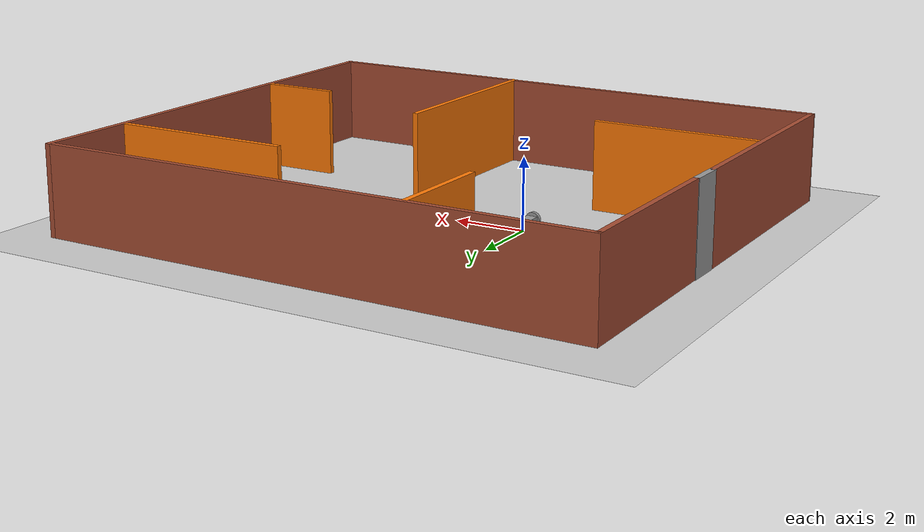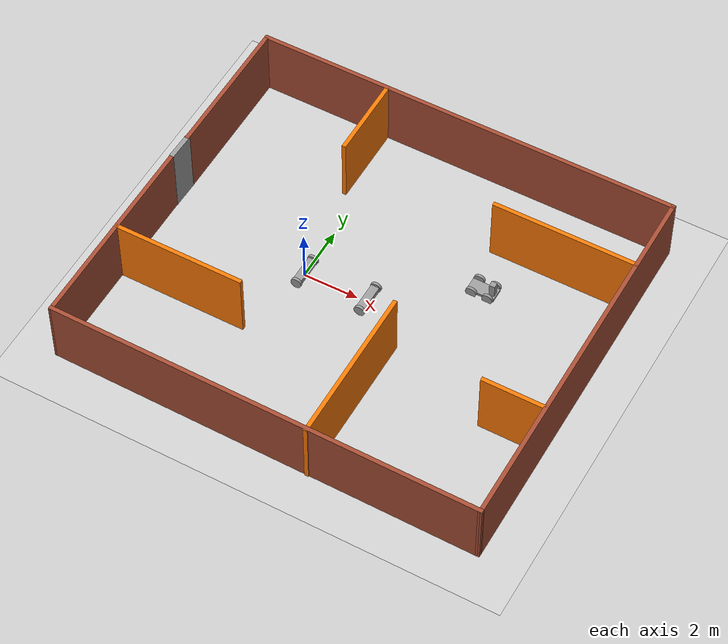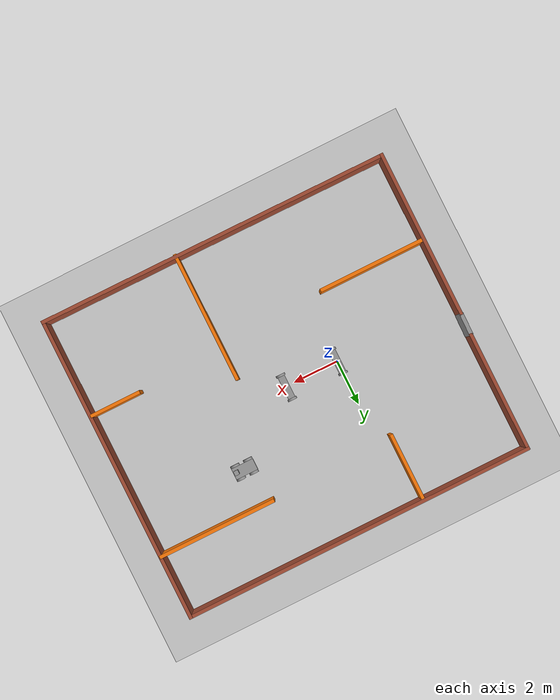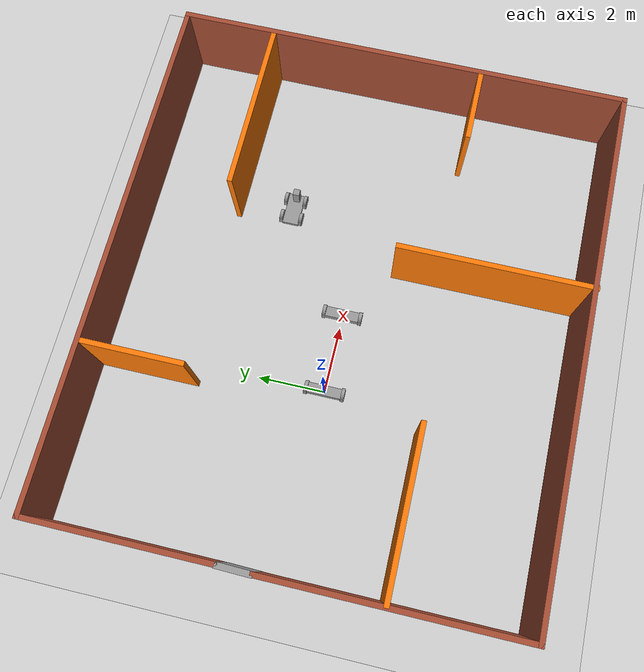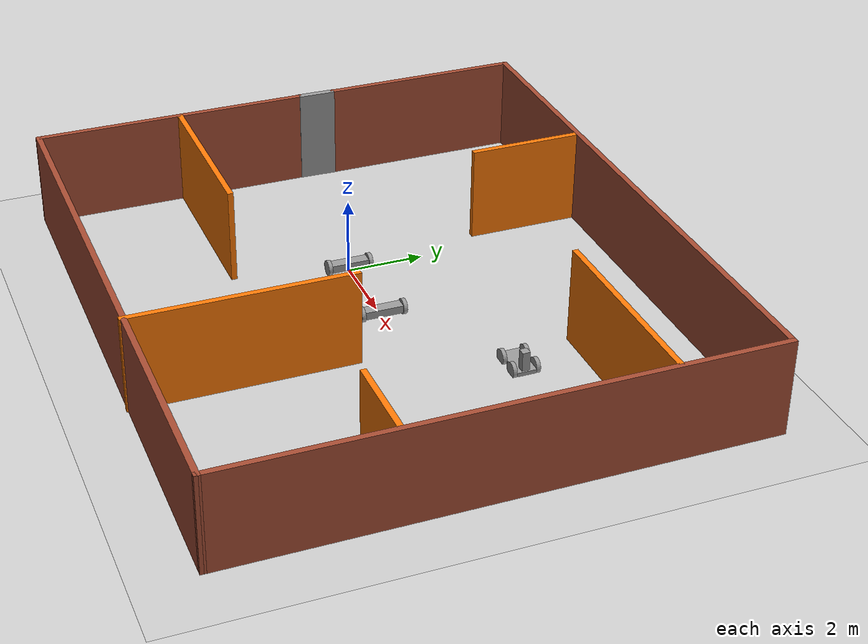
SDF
<sdf version="1.6">
 <world name="default">
  <plugin name="hello" filename="libhello.so"/>
  <light name="sun" type="directional">
   <pose>0 0 10 0 -0 0</pose>
   <diffuse>0.8 0.8 0.8 1</diffuse>
   <specular>0.2 0.2 0.2 1</specular>
   <attenuation>
    <range>1000</range>
    <constant>0.9</constant>
    <linear>0.01</linear>
    <quadratic>0.001</quadratic>
   </attenuation>
   <direction>-0.5 0.1 -0.9</direction>
  </light>
  <model name="ground_plane">
   <static>1</static>
   <link name="link">
    <collision name="collision">
     <geometry><plane><normal>0 0 1</normal><size>100 100</size></plane></geometry>
     <surface>
      <contact><collide_bitmask>65535</collide_bitmask></contact>
      <friction><ode><mu>100</mu><mu2>50</mu2></ode></friction>
     </surface>
    </collision>
    <visual name="visual">
     <cast_shadows>0</cast_shadows>
     <geometry><plane><normal>0 0 1</normal><size>100 100</size></plane></geometry>
     <material>
      <script><uri>file://media/materials/scripts/gazebo.material</uri><name>Gazebo/Grey</name></script>
     </material>
    </visual>
   </link>
  </model>
  <gravity>0 0 -9.8</gravity>
  <magnetic_field>6e-06 2.3e-05 -4.2e-05</magnetic_field>
  <atmosphere type="adiabatic"/>
  <physics name="default_physics" default="0" type="ode">
   <max_step_size>0.001</max_step_size>
   <real_time_factor>1</real_time_factor>
   <real_time_update_rate>1000</real_time_update_rate>
  </physics>
  <scene><ambient>0.4 0.4 0.4 1</ambient><background>0.7 0.7 0.7 1</background><shadows>1</shadows></scene>
  <spherical_coordinates>
   <surface_model>EARTH_WGS84</surface_model>
   <latitude_deg>0</latitude_deg>
   <longitude_deg>0</longitude_deg>
   <elevation>0</elevation>
   <heading_deg>0</heading_deg>
  </spherical_coordinates>
  <model name="my-robot">
   <plugin name="modelpush" filename="libmodelpush.so"/>
   <link name="link">
    <pose>0 0 0.2 0 -0 0</pose>
    <inertial>
     <mass>1</mass>
     <inertia>
      <ixx>0.166667</ixx>
      <ixy>0</ixy>
      <ixz>0</ixz>
      <iyy>0.166667</iyy>
      <iyz>0</iyz>
      <izz>0.166667</izz>
     </inertia>
    </inertial>
    <visual name="visual">
     <geometry><box><size>0.3 1 0.2</size></box></geometry>
     <material>
      <script><name>Gazebo/Grey</name><uri>file://media/materials/scripts/gazebo.material</uri></script>
      <shader type="pixel"><normal_map>__default__</normal_map></shader>
      <ambient>0.3 0.3 0.3 1</ambient>
      <diffuse>0.7 0.7 0.7 1</diffuse>
      <specular>0.01 0.01 0.01 1</specular>
      <emissive>0 0 0 1</emissive>
     </material>
    </visual>
    <collision name="collision">
     <geometry><box><size>0.3 1 0.2</size></box></geometry>
     <surface>
      <friction>
       <ode><mu>1</mu><mu2>1</mu2><fdir1>0 0 0</fdir1><slip1>0</slip1><slip2>0</slip2></ode>
       <torsional>
        <coefficient>1</coefficient>
        <patch_radius>0</patch_radius>
        <surface_radius>0</surface_radius>
        <use_patch_radius>1</use_patch_radius>
        <ode><slip>0</slip></ode>
       </torsional>
      </friction>
      <bounce><restitution_coefficient>0</restitution_coefficient><threshold>1e+06</threshold></bounce>
      <contact>
       <collide_without_contact>0</collide_without_contact>
       <collide_without_contact_bitmask>1</collide_without_contact_bitmask>
       <collide_bitmask>1</collide_bitmask>
       <ode>
        <soft_cfm>0</soft_cfm>
        <soft_erp>0.2</soft_erp>
        <kp>1e+13</kp>
        <kd>1</kd>
        <max_vel>0.01</max_vel>
        <min_depth>0</min_depth>
       </ode>
       <bullet>
        <split_impulse>1</split_impulse>
        <split_impulse_penetration_threshold>-0.01</split_impulse_penetration_threshold>
        <soft_cfm>0</soft_cfm>
        <soft_erp>0.2</soft_erp>
        <kp>1e+13</kp>
        <kd>1</kd>
       </bullet>
      </contact>
     </surface>
    </collision>
   </link>
   <link name="link_0">
    <pose>0 -0.550019 0.2 1.5707 -0 0</pose>
    <inertial>
     <mass>1</mass>
     <inertia><ixx>0.145833</ixx><ixy>0</ixy><ixz>0</ixz><iyy>0.145833</iyy><iyz>0</iyz><izz>0.125</izz></inertia>
    </inertial>
    <visual name="visual">
     <geometry><cylinder><radius>0.2</radius><length>0.1</length></cylinder></geometry>
     <material>
      <lighting>1</lighting>
      <script><uri>file://media/materials/scripts/gazebo.material</uri><name>Gazebo/Grey</name></script>
      <shader type="pixel"><normal_map>__default__</normal_map></shader>
      <ambient>0.3 0.3 0.3 1</ambient>
      <diffuse>0.7 0.7 0.7 1</diffuse>
      <specular>0.01 0.01 0.01 1</specular>
      <emissive>0 0 0 1</emissive>
     </material>
    </visual>
    <collision name="collision">
     <geometry><cylinder><radius>0.2</radius><length>0.1</length></cylinder></geometry>
     <surface>
      <friction>
       <ode><mu>1</mu><mu2>1</mu2><fdir1>0 0 0</fdir1><slip1>0</slip1><slip2>0</slip2></ode>
       <torsional>
        <coefficient>1</coefficient>
        <patch_radius>0</patch_radius>
        <surface_radius>0</surface_radius>
        <use_patch_radius>1</use_patch_radius>
        <ode><slip>0</slip></ode>
       </torsional>
      </friction>
      <bounce><restitution_coefficient>0</restitution_coefficient><threshold>1e+06</threshold></bounce>
      <contact>
       <collide_without_contact>0</collide_without_contact>
       <collide_without_contact_bitmask>1</collide_without_contact_bitmask>
       <collide_bitmask>1</collide_bitmask>
       <ode>
        <soft_cfm>0</soft_cfm>
        <soft_erp>0.2</soft_erp>
        <kp>1e+13</kp>
        <kd>1</kd>
        <max_vel>0.01</max_vel>
        <min_depth>0</min_depth>
       </ode>
       <bullet>
        <split_impulse>1</split_impulse>
        <split_impulse_penetration_threshold>-0.01</split_impulse_penetration_threshold>
        <soft_cfm>0</soft_cfm>
        <soft_erp>0.2</soft_erp>
        <kp>1e+13</kp>
        <kd>1</kd>
       </bullet>
      </contact>
     </surface>
    </collision>
   </link>
   <link name="link_0_clone">
    <pose>0 0.550019 0.2 1.5707 -0 0</pose>
    <inertial>
     <mass>1</mass>
     <inertia><ixx>0.145833</ixx><ixy>0</ixy><ixz>0</ixz><iyy>0.145833</iyy><iyz>0</iyz><izz>0.125</izz></inertia>
    </inertial>
    <visual name="visual">
     <geometry><cylinder><radius>0.2</radius><length>0.1</length></cylinder></geometry>
     <material>
      <lighting>1</lighting>
      <script><uri>file://media/materials/scripts/gazebo.material</uri><name>Gazebo/Grey</name></script>
      <shader type="pixel"><normal_map>__default__</normal_map></shader>
      <ambient>0.3 0.3 0.3 1</ambient>
      <diffuse>0.7 0.7 0.7 1</diffuse>
      <specular>0.01 0.01 0.01 1</specular>
      <emissive>0 0 0 1</emissive>
     </material>
    </visual>
    <collision name="collision">
     <geometry><cylinder><radius>0.2</radius><length>0.1</length></cylinder></geometry>
     <surface>
      <friction>
       <ode><mu>1</mu><mu2>1</mu2><fdir1>0 0 0</fdir1><slip1>0</slip1><slip2>0</slip2></ode>
       <torsional>
        <coefficient>1</coefficient>
        <patch_radius>0</patch_radius>
        <surface_radius>0</surface_radius>
        <use_patch_radius>1</use_patch_radius>
        <ode><slip>0</slip></ode>
       </torsional>
      </friction>
      <bounce><restitution_coefficient>0</restitution_coefficient><threshold>1e+06</threshold></bounce>
      <contact>
       <collide_without_contact>0</collide_without_contact>
       <collide_without_contact_bitmask>1</collide_without_contact_bitmask>
       <collide_bitmask>1</collide_bitmask>
       <ode>
        <soft_cfm>0</soft_cfm>
        <soft_erp>0.2</soft_erp>
        <kp>1e+13</kp>
        <kd>1</kd>
        <max_vel>0.01</max_vel>
        <min_depth>0</min_depth>
       </ode>
       <bullet>
        <split_impulse>1</split_impulse>
        <split_impulse_penetration_threshold>-0.01</split_impulse_penetration_threshold>
        <soft_cfm>0</soft_cfm>
        <soft_erp>0.2</soft_erp>
        <kp>1e+13</kp>
        <kd>1</kd>
       </bullet>
      </contact>
     </surface>
    </collision>
   </link>
   <joint name="link_JOINT_0" type="revolute">
    <parent>link</parent>
    <child>link_0</child>
    <axis>
     <xyz>1 0 0</xyz>
     <use_parent_model_frame>0</use_parent_model_frame>
     <limit>
      <lower>-1.79769e+308</lower>
      <upper>1.79769e+308</upper>
      <effort>-1</effort>
      <velocity>-1</velocity>
     </limit>
     <dynamics>
      <spring_reference>0</spring_reference>
      <spring_stiffness>0</spring_stiffness>
      <damping>0</damping>
      <friction>0</friction>
     </dynamics>
    </axis>
    <physics>
     <ode><limit><cfm>0</cfm><erp>0.2</erp></limit><suspension><cfm>0</cfm><erp>0.2</erp></suspension></ode>
    </physics>
   </joint>
   <joint name="link_JOINT_1" type="revolute">
    <parent>link</parent>
    <child>link_0_clone</child>
    <axis>
     <xyz>1 0 0</xyz>
     <use_parent_model_frame>0</use_parent_model_frame>
     <limit>
      <lower>-1.79769e+308</lower>
      <upper>1.79769e+308</upper>
      <effort>-1</effort>
      <velocity>-1</velocity>
     </limit>
     <dynamics>
      <spring_reference>0</spring_reference>
      <spring_stiffness>0</spring_stiffness>
      <damping>0</damping>
      <friction>0</friction>
     </dynamics>
    </axis>
    <physics>
     <ode><limit><cfm>0</cfm><erp>0.2</erp></limit><suspension><cfm>0</cfm><erp>0.2</erp></suspension></ode>
    </physics>
   </joint>
   <static>0</static>
  </model>
  <model name="my-robot_0">
   <link name="link">
    <pose>0 0 0.2 0 -0 0</pose>
    <inertial>
     <mass>1</mass>
     <inertia>
      <ixx>0.166667</ixx>
      <ixy>0</ixy>
      <ixz>0</ixz>
      <iyy>0.166667</iyy>
      <iyz>0</iyz>
      <izz>0.166667</izz>
     </inertia>
    </inertial>
    <visual name="visual">
     <geometry><box><size>0.3 1 0.2</size></box></geometry>
     <material>
      <script><name>Gazebo/Grey</name><uri>file://media/materials/scripts/gazebo.material</uri></script>
      <shader type="pixel"><normal_map>__default__</normal_map></shader>
      <ambient>0.3 0.3 0.3 1</ambient>
      <diffuse>0.7 0.7 0.7 1</diffuse>
      <specular>0.01 0.01 0.01 1</specular>
      <emissive>0 0 0 1</emissive>
     </material>
    </visual>
    <collision name="collision">
     <geometry><box><size>0.3 1 0.2</size></box></geometry>
     <surface>
      <friction>
       <ode><mu>1</mu><mu2>1</mu2><fdir1>0 0 0</fdir1><slip1>0</slip1><slip2>0</slip2></ode>
       <torsional>
        <coefficient>1</coefficient>
        <patch_radius>0</patch_radius>
        <surface_radius>0</surface_radius>
        <use_patch_radius>1</use_patch_radius>
        <ode><slip>0</slip></ode>
       </torsional>
      </friction>
      <bounce><restitution_coefficient>0</restitution_coefficient><threshold>1e+06</threshold></bounce>
      <contact>
       <collide_without_contact>0</collide_without_contact>
       <collide_without_contact_bitmask>1</collide_without_contact_bitmask>
       <collide_bitmask>1</collide_bitmask>
       <ode>
        <soft_cfm>0</soft_cfm>
        <soft_erp>0.2</soft_erp>
        <kp>1e+13</kp>
        <kd>1</kd>
        <max_vel>0.01</max_vel>
        <min_depth>0</min_depth>
       </ode>
       <bullet>
        <split_impulse>1</split_impulse>
        <split_impulse_penetration_threshold>-0.01</split_impulse_penetration_threshold>
        <soft_cfm>0</soft_cfm>
        <soft_erp>0.2</soft_erp>
        <kp>1e+13</kp>
        <kd>1</kd>
       </bullet>
      </contact>
     </surface>
    </collision>
   </link>
   <link name="link_0">
    <pose>0 -0.550019 0.2 1.5707 -0 0</pose>
    <inertial>
     <mass>1</mass>
     <inertia><ixx>0.145833</ixx><ixy>0</ixy><ixz>0</ixz><iyy>0.145833</iyy><iyz>0</iyz><izz>0.125</izz></inertia>
    </inertial>
    <visual name="visual">
     <geometry><cylinder><radius>0.2</radius><length>0.1</length></cylinder></geometry>
     <material>
      <lighting>1</lighting>
      <script><uri>file://media/materials/scripts/gazebo.material</uri><name>Gazebo/Grey</name></script>
      <shader type="pixel"><normal_map>__default__</normal_map></shader>
      <ambient>0.3 0.3 0.3 1</ambient>
      <diffuse>0.7 0.7 0.7 1</diffuse>
      <specular>0.01 0.01 0.01 1</specular>
      <emissive>0 0 0 1</emissive>
     </material>
    </visual>
    <collision name="collision">
     <geometry><cylinder><radius>0.2</radius><length>0.1</length></cylinder></geometry>
     <surface>
      <friction>
       <ode><mu>1</mu><mu2>1</mu2><fdir1>0 0 0</fdir1><slip1>0</slip1><slip2>0</slip2></ode>
       <torsional>
        <coefficient>1</coefficient>
        <patch_radius>0</patch_radius>
        <surface_radius>0</surface_radius>
        <use_patch_radius>1</use_patch_radius>
        <ode><slip>0</slip></ode>
       </torsional>
      </friction>
      <bounce><restitution_coefficient>0</restitution_coefficient><threshold>1e+06</threshold></bounce>
      <contact>
       <collide_without_contact>0</collide_without_contact>
       <collide_without_contact_bitmask>1</collide_without_contact_bitmask>
       <collide_bitmask>1</collide_bitmask>
       <ode>
        <soft_cfm>0</soft_cfm>
        <soft_erp>0.2</soft_erp>
        <kp>1e+13</kp>
        <kd>1</kd>
        <max_vel>0.01</max_vel>
        <min_depth>0</min_depth>
       </ode>
       <bullet>
        <split_impulse>1</split_impulse>
        <split_impulse_penetration_threshold>-0.01</split_impulse_penetration_threshold>
        <soft_cfm>0</soft_cfm>
        <soft_erp>0.2</soft_erp>
        <kp>1e+13</kp>
        <kd>1</kd>
       </bullet>
      </contact>
     </surface>
    </collision>
   </link>
   <link name="link_0_clone">
    <pose>0 0.550019 0.2 1.5707 -0 0</pose>
    <inertial>
     <mass>1</mass>
     <inertia><ixx>0.145833</ixx><ixy>0</ixy><ixz>0</ixz><iyy>0.145833</iyy><iyz>0</iyz><izz>0.125</izz></inertia>
    </inertial>
    <visual name="visual">
     <geometry><cylinder><radius>0.2</radius><length>0.1</length></cylinder></geometry>
     <material>
      <lighting>1</lighting>
      <script><uri>file://media/materials/scripts/gazebo.material</uri><name>Gazebo/Grey</name></script>
      <shader type="pixel"><normal_map>__default__</normal_map></shader>
      <ambient>0.3 0.3 0.3 1</ambient>
      <diffuse>0.7 0.7 0.7 1</diffuse>
      <specular>0.01 0.01 0.01 1</specular>
      <emissive>0 0 0 1</emissive>
     </material>
    </visual>
    <collision name="collision">
     <geometry><cylinder><radius>0.2</radius><length>0.1</length></cylinder></geometry>
     <surface>
      <friction>
       <ode><mu>1</mu><mu2>1</mu2><fdir1>0 0 0</fdir1><slip1>0</slip1><slip2>0</slip2></ode>
       <torsional>
        <coefficient>1</coefficient>
        <patch_radius>0</patch_radius>
        <surface_radius>0</surface_radius>
        <use_patch_radius>1</use_patch_radius>
        <ode><slip>0</slip></ode>
       </torsional>
      </friction>
      <bounce><restitution_coefficient>0</restitution_coefficient><threshold>1e+06</threshold></bounce>
      <contact>
       <collide_without_contact>0</collide_without_contact>
       <collide_without_contact_bitmask>1</collide_without_contact_bitmask>
       <collide_bitmask>1</collide_bitmask>
       <ode>
        <soft_cfm>0</soft_cfm>
        <soft_erp>0.2</soft_erp>
        <kp>1e+13</kp>
        <kd>1</kd>
        <max_vel>0.01</max_vel>
        <min_depth>0</min_depth>
       </ode>
       <bullet>
        <split_impulse>1</split_impulse>
        <split_impulse_penetration_threshold>-0.01</split_impulse_penetration_threshold>
        <soft_cfm>0</soft_cfm>
        <soft_erp>0.2</soft_erp>
        <kp>1e+13</kp>
        <kd>1</kd>
       </bullet>
      </contact>
     </surface>
    </collision>
   </link>
   <joint name="link_JOINT_0" type="revolute">
    <parent>link</parent>
    <child>link_0</child>
    <axis>
     <xyz>1 0 0</xyz>
     <use_parent_model_frame>0</use_parent_model_frame>
     <limit>
      <lower>-1.79769e+308</lower>
      <upper>1.79769e+308</upper>
      <effort>-1</effort>
      <velocity>-1</velocity>
     </limit>
     <dynamics>
      <spring_reference>0</spring_reference>
      <spring_stiffness>0</spring_stiffness>
      <damping>0</damping>
      <friction>0</friction>
     </dynamics>
    </axis>
    <physics>
     <ode><limit><cfm>0</cfm><erp>0.2</erp></limit><suspension><cfm>0</cfm><erp>0.2</erp></suspension></ode>
    </physics>
   </joint>
   <joint name="link_JOINT_1" type="revolute">
    <parent>link</parent>
    <child>link_0_clone</child>
    <axis>
     <xyz>1 0 0</xyz>
     <use_parent_model_frame>0</use_parent_model_frame>
     <limit>
      <lower>-1.79769e+308</lower>
      <upper>1.79769e+308</upper>
      <effort>-1</effort>
      <velocity>-1</velocity>
     </limit>
     <dynamics>
      <spring_reference>0</spring_reference>
      <spring_stiffness>0</spring_stiffness>
      <damping>0</damping>
      <friction>0</friction>
     </dynamics>
    </axis>
    <physics>
     <ode><limit><cfm>0</cfm><erp>0.2</erp></limit><suspension><cfm>0</cfm><erp>0.2</erp></suspension></ode>
    </physics>
   </joint>
   <static>0</static>
   <pose>2.38856 0.019112 0 0 -0 0</pose>
  </model>
  <model name="robot2">
   <plugin name="modelpush" filename="libmodelpush.so"/>
   <link name="link_0">
    <pose>-0.505429 -0.212278 0.058001 0 -0 0</pose>
    <inertial>
     <mass>1</mass>
     <inertia>
      <ixx>0.166667</ixx>
      <ixy>0</ixy>
      <ixz>0</ixz>
      <iyy>0.166667</iyy>
      <iyz>0</iyz>
      <izz>0.166667</izz>
     </inertia>
    </inertial>
    <visual name="visual">
     <geometry><box><size>1 0.5 0.1</size></box></geometry>
     <material>
      <lighting>1</lighting>
      <script><uri>file://media/materials/scripts/gazebo.material</uri><name>Gazebo/Grey</name></script>
      <shader type="pixel"><normal_map>__default__</normal_map></shader>
      <ambient>0.3 0.3 0.3 1</ambient>
      <diffuse>0.7 0.7 0.7 1</diffuse>
      <specular>0.01 0.01 0.01 1</specular>
      <emissive>0 0 0 1</emissive>
     </material>
    </visual>
    <collision name="collision">
     <geometry><box><size>1 0.5 0.1</size></box></geometry>
     <surface>
      <friction>
       <ode><mu>1</mu><mu2>1</mu2><fdir1>0 0 0</fdir1><slip1>0</slip1><slip2>0</slip2></ode>
       <torsional>
        <coefficient>1</coefficient>
        <patch_radius>0</patch_radius>
        <surface_radius>0</surface_radius>
        <use_patch_radius>1</use_patch_radius>
        <ode><slip>0</slip></ode>
       </torsional>
      </friction>
      <bounce><restitution_coefficient>0</restitution_coefficient><threshold>1e+06</threshold></bounce>
      <contact>
       <collide_without_contact>0</collide_without_contact>
       <collide_without_contact_bitmask>1</collide_without_contact_bitmask>
       <collide_bitmask>1</collide_bitmask>
       <ode>
        <soft_cfm>0</soft_cfm>
        <soft_erp>0.2</soft_erp>
        <kp>1e+13</kp>
        <kd>1</kd>
        <max_vel>0.01</max_vel>
        <min_depth>0</min_depth>
       </ode>
       <bullet>
        <split_impulse>1</split_impulse>
        <split_impulse_penetration_threshold>-0.01</split_impulse_penetration_threshold>
        <soft_cfm>0</soft_cfm>
        <soft_erp>0.2</soft_erp>
        <kp>1e+13</kp>
        <kd>1</kd>
       </bullet>
      </contact>
     </surface>
    </collision>
   </link>
   <link name="link_1">
    <pose>-0.805429 -0.512297 0.102996 1.5707 -0 0</pose>
    <inertial>
     <mass>1</mass>
     <inertia><ixx>0.145833</ixx><ixy>0</ixy><ixz>0</ixz><iyy>0.145833</iyy><iyz>0</iyz><izz>0.125</izz></inertia>
    </inertial>
    <visual name="visual">
     <geometry><cylinder><radius>0.2</radius><length>0.1</length></cylinder></geometry>
     <material>
      <lighting>1</lighting>
      <script><uri>file://media/materials/scripts/gazebo.material</uri><name>Gazebo/Grey</name></script>
      <shader type="pixel"><normal_map>__default__</normal_map></shader>
      <ambient>0.3 0.3 0.3 1</ambient>
      <diffuse>0.7 0.7 0.7 1</diffuse>
      <specular>0.01 0.01 0.01 1</specular>
      <emissive>0 0 0 1</emissive>
     </material>
    </visual>
    <collision name="collision">
     <geometry><cylinder><radius>0.2</radius><length>0.1</length></cylinder></geometry>
     <surface>
      <friction>
       <ode><mu>1</mu><mu2>1</mu2><fdir1>0 0 0</fdir1><slip1>0</slip1><slip2>0</slip2></ode>
       <torsional>
        <coefficient>1</coefficient>
        <patch_radius>0</patch_radius>
        <surface_radius>0</surface_radius>
        <use_patch_radius>1</use_patch_radius>
        <ode><slip>0</slip></ode>
       </torsional>
      </friction>
      <bounce><restitution_coefficient>0</restitution_coefficient><threshold>1e+06</threshold></bounce>
      <contact>
       <collide_without_contact>0</collide_without_contact>
       <collide_without_contact_bitmask>1</collide_without_contact_bitmask>
       <collide_bitmask>1</collide_bitmask>
       <ode>
        <soft_cfm>0</soft_cfm>
        <soft_erp>0.2</soft_erp>
        <kp>1e+13</kp>
        <kd>1</kd>
        <max_vel>0.01</max_vel>
        <min_depth>0</min_depth>
       </ode>
       <bullet>
        <split_impulse>1</split_impulse>
        <split_impulse_penetration_threshold>-0.01</split_impulse_penetration_threshold>
        <soft_cfm>0</soft_cfm>
        <soft_erp>0.2</soft_erp>
        <kp>1e+13</kp>
        <kd>1</kd>
       </bullet>
      </contact>
     </surface>
    </collision>
   </link>
   <link name="link_1_clone">
    <pose>-0.805429 0.087742 0.103001 1.5707 -0 0</pose>
    <inertial>
     <mass>1</mass>
     <inertia><ixx>0.145833</ixx><ixy>0</ixy><ixz>0</ixz><iyy>0.145833</iyy><iyz>0</iyz><izz>0.125</izz></inertia>
    </inertial>
    <visual name="visual">
     <geometry><cylinder><radius>0.2</radius><length>0.1</length></cylinder></geometry>
     <material>
      <lighting>1</lighting>
      <script><uri>file://media/materials/scripts/gazebo.material</uri><name>Gazebo/Grey</name></script>
      <shader type="pixel"><normal_map>__default__</normal_map></shader>
      <ambient>0.3 0.3 0.3 1</ambient>
      <diffuse>0.7 0.7 0.7 1</diffuse>
      <specular>0.01 0.01 0.01 1</specular>
      <emissive>0 0 0 1</emissive>
     </material>
    </visual>
    <collision name="collision">
     <geometry><cylinder><radius>0.2</radius><length>0.1</length></cylinder></geometry>
     <surface>
      <friction>
       <ode><mu>1</mu><mu2>1</mu2><fdir1>0 0 0</fdir1><slip1>0</slip1><slip2>0</slip2></ode>
       <torsional>
        <coefficient>1</coefficient>
        <patch_radius>0</patch_radius>
        <surface_radius>0</surface_radius>
        <use_patch_radius>1</use_patch_radius>
        <ode><slip>0</slip></ode>
       </torsional>
      </friction>
      <bounce><restitution_coefficient>0</restitution_coefficient><threshold>1e+06</threshold></bounce>
      <contact>
       <collide_without_contact>0</collide_without_contact>
       <collide_without_contact_bitmask>1</collide_without_contact_bitmask>
       <collide_bitmask>1</collide_bitmask>
       <ode>
        <soft_cfm>0</soft_cfm>
        <soft_erp>0.2</soft_erp>
        <kp>1e+13</kp>
        <kd>1</kd>
        <max_vel>0.01</max_vel>
        <min_depth>0</min_depth>
       </ode>
       <bullet>
        <split_impulse>1</split_impulse>
        <split_impulse_penetration_threshold>-0.01</split_impulse_penetration_threshold>
        <soft_cfm>0</soft_cfm>
        <soft_erp>0.2</soft_erp>
        <kp>1e+13</kp>
        <kd>1</kd>
       </bullet>
      </contact>
     </surface>
    </collision>
   </link>
   <link name="link_1_clone_0">
    <pose>-0.205429 -0.512297 0.103001 1.5707 -0 0</pose>
    <inertial>
     <mass>1</mass>
     <inertia><ixx>0.145833</ixx><ixy>0</ixy><ixz>0</ixz><iyy>0.145833</iyy><iyz>0</iyz><izz>0.125</izz></inertia>
    </inertial>
    <visual name="visual">
     <geometry><cylinder><radius>0.2</radius><length>0.1</length></cylinder></geometry>
     <material>
      <lighting>1</lighting>
      <script><uri>file://media/materials/scripts/gazebo.material</uri><name>Gazebo/Grey</name></script>
      <shader type="pixel"><normal_map>__default__</normal_map></shader>
      <ambient>0.3 0.3 0.3 1</ambient>
      <diffuse>0.7 0.7 0.7 1</diffuse>
      <specular>0.01 0.01 0.01 1</specular>
      <emissive>0 0 0 1</emissive>
     </material>
    </visual>
    <collision name="collision">
     <geometry><cylinder><radius>0.2</radius><length>0.1</length></cylinder></geometry>
     <surface>
      <friction>
       <ode><mu>1</mu><mu2>1</mu2><fdir1>0 0 0</fdir1><slip1>0</slip1><slip2>0</slip2></ode>
       <torsional>
        <coefficient>1</coefficient>
        <patch_radius>0</patch_radius>
        <surface_radius>0</surface_radius>
        <use_patch_radius>1</use_patch_radius>
        <ode><slip>0</slip></ode>
       </torsional>
      </friction>
      <bounce><restitution_coefficient>0</restitution_coefficient><threshold>1e+06</threshold></bounce>
      <contact>
       <collide_without_contact>0</collide_without_contact>
       <collide_without_contact_bitmask>1</collide_without_contact_bitmask>
       <collide_bitmask>1</collide_bitmask>
       <ode>
        <soft_cfm>0</soft_cfm>
        <soft_erp>0.2</soft_erp>
        <kp>1e+13</kp>
        <kd>1</kd>
        <max_vel>0.01</max_vel>
        <min_depth>0</min_depth>
       </ode>
       <bullet>
        <split_impulse>1</split_impulse>
        <split_impulse_penetration_threshold>-0.01</split_impulse_penetration_threshold>
        <soft_cfm>0</soft_cfm>
        <soft_erp>0.2</soft_erp>
        <kp>1e+13</kp>
        <kd>1</kd>
       </bullet>
      </contact>
     </surface>
    </collision>
   </link>
   <link name="link_1_clone_1">
    <pose>-0.205429 0.087742 0.103001 1.5707 -0 0</pose>
    <inertial>
     <mass>1</mass>
     <inertia><ixx>0.145833</ixx><ixy>0</ixy><ixz>0</ixz><iyy>0.145833</iyy><iyz>0</iyz><izz>0.125</izz></inertia>
    </inertial>
    <visual name="visual">
     <geometry><cylinder><radius>0.2</radius><length>0.1</length></cylinder></geometry>
     <material>
      <lighting>1</lighting>
      <script><uri>file://media/materials/scripts/gazebo.material</uri><name>Gazebo/Grey</name></script>
      <shader type="pixel"><normal_map>__default__</normal_map></shader>
      <ambient>0.3 0.3 0.3 1</ambient>
      <diffuse>0.7 0.7 0.7 1</diffuse>
      <specular>0.01 0.01 0.01 1</specular>
      <emissive>0 0 0 1</emissive>
     </material>
    </visual>
    <collision name="collision">
     <geometry><cylinder><radius>0.2</radius><length>0.1</length></cylinder></geometry>
     <surface>
      <friction>
       <ode><mu>1</mu><mu2>1</mu2><fdir1>0 0 0</fdir1><slip1>0</slip1><slip2>0</slip2></ode>
       <torsional>
        <coefficient>1</coefficient>
        <patch_radius>0</patch_radius>
        <surface_radius>0</surface_radius>
        <use_patch_radius>1</use_patch_radius>
        <ode><slip>0</slip></ode>
       </torsional>
      </friction>
      <bounce><restitution_coefficient>0</restitution_coefficient><threshold>1e+06</threshold></bounce>
      <contact>
       <collide_without_contact>0</collide_without_contact>
       <collide_without_contact_bitmask>1</collide_without_contact_bitmask>
       <collide_bitmask>1</collide_bitmask>
       <ode>
        <soft_cfm>0</soft_cfm>
        <soft_erp>0.2</soft_erp>
        <kp>1e+13</kp>
        <kd>1</kd>
        <max_vel>0.01</max_vel>
        <min_depth>0</min_depth>
       </ode>
       <bullet>
        <split_impulse>1</split_impulse>
        <split_impulse_penetration_threshold>-0.01</split_impulse_penetration_threshold>
        <soft_cfm>0</soft_cfm>
        <soft_erp>0.2</soft_erp>
        <kp>1e+13</kp>
        <kd>1</kd>
       </bullet>
      </contact>
     </surface>
    </collision>
   </link>
   <link name="link_2">
    <pose>-0.145429 -0.232278 0.358001 0 -0 0</pose>
    <inertial>
     <mass>1</mass>
     <inertia>
      <ixx>0.166667</ixx>
      <ixy>0</ixy>
      <ixz>0</ixz>
      <iyy>0.166667</iyy>
      <iyz>0</iyz>
      <izz>0.166667</izz>
     </inertia>
    </inertial>
    <visual name="visual">
     <geometry><box><size>0.2 0.2 0.5</size></box></geometry>
     <material>
      <lighting>1</lighting>
      <script><uri>file://media/materials/scripts/gazebo.material</uri><name>Gazebo/Grey</name></script>
      <shader type="pixel"><normal_map>__default__</normal_map></shader>
      <ambient>0.3 0.3 0.3 1</ambient>
      <diffuse>0.7 0.7 0.7 1</diffuse>
      <specular>0.01 0.01 0.01 1</specular>
      <emissive>0 0 0 1</emissive>
     </material>
    </visual>
    <collision name="collision">
     <geometry><box><size>0.2 0.2 0.5</size></box></geometry>
     <surface>
      <friction>
       <ode><mu>1</mu><mu2>1</mu2><fdir1>0 0 0</fdir1><slip1>0</slip1><slip2>0</slip2></ode>
       <torsional>
        <coefficient>1</coefficient>
        <patch_radius>0</patch_radius>
        <surface_radius>0</surface_radius>
        <use_patch_radius>1</use_patch_radius>
        <ode><slip>0</slip></ode>
       </torsional>
      </friction>
      <bounce><restitution_coefficient>0</restitution_coefficient><threshold>1e+06</threshold></bounce>
      <contact>
       <collide_without_contact>0</collide_without_contact>
       <collide_without_contact_bitmask>1</collide_without_contact_bitmask>
       <collide_bitmask>1</collide_bitmask>
       <ode>
        <soft_cfm>0</soft_cfm>
        <soft_erp>0.2</soft_erp>
        <kp>1e+13</kp>
        <kd>1</kd>
        <max_vel>0.01</max_vel>
        <min_depth>0</min_depth>
       </ode>
       <bullet>
        <split_impulse>1</split_impulse>
        <split_impulse_penetration_threshold>-0.01</split_impulse_penetration_threshold>
        <soft_cfm>0</soft_cfm>
        <soft_erp>0.2</soft_erp>
        <kp>1e+13</kp>
        <kd>1</kd>
       </bullet>
      </contact>
     </surface>
    </collision>
   </link>
   <joint name="link_0_JOINT_1" type="revolute">
    <parent>link_0</parent>
    <child>link_1</child>
    <axis>
     <xyz>1 0 0</xyz>
     <use_parent_model_frame>0</use_parent_model_frame>
     <limit>
      <lower>-1.79769e+308</lower>
      <upper>1.79769e+308</upper>
      <effort>-1</effort>
      <velocity>-1</velocity>
     </limit>
     <dynamics>
      <spring_reference>0</spring_reference>
      <spring_stiffness>0</spring_stiffness>
      <damping>0</damping>
     </dynamics>
    </axis>
    <physics>
     <ode><limit><cfm>0</cfm><erp>0.2</erp></limit><suspension><cfm>0</cfm><erp>0.2</erp></suspension></ode>
    </physics>
   </joint>
   <joint name="link_0_JOINT_3" type="revolute">
    <parent>link_0</parent>
    <child>link_1_clone_0</child>
    <pose>0 0 0 -0.01 0 0</pose>
    <axis>
     <xyz>1 0 0</xyz>
     <use_parent_model_frame>0</use_parent_model_frame>
     <limit>
      <lower>-1.79769e+308</lower>
      <upper>1.79769e+308</upper>
      <effort>-1</effort>
      <velocity>-1</velocity>
     </limit>
     <dynamics>
      <spring_reference>0</spring_reference>
      <spring_stiffness>0</spring_stiffness>
      <damping>0</damping>
     </dynamics>
    </axis>
    <physics>
     <ode><limit><cfm>0</cfm><erp>0.2</erp></limit><suspension><cfm>0</cfm><erp>0.2</erp></suspension></ode>
    </physics>
   </joint>
   <joint name="link_0_JOINT_4" type="revolute">
    <parent>link_0</parent>
    <child>link_1_clone_1</child>
    <axis>
     <xyz>1 0 0</xyz>
     <use_parent_model_frame>0</use_parent_model_frame>
     <limit>
      <lower>-1.79769e+308</lower>
      <upper>1.79769e+308</upper>
      <effort>-1</effort>
      <velocity>-1</velocity>
     </limit>
     <dynamics>
      <spring_reference>0</spring_reference>
      <spring_stiffness>0</spring_stiffness>
      <damping>0</damping>
     </dynamics>
    </axis>
    <physics>
     <ode><limit><cfm>0</cfm><erp>0.2</erp></limit><suspension><cfm>0</cfm><erp>0.2</erp></suspension></ode>
    </physics>
   </joint>
   <joint name="link_0_JOINT_6" type="revolute">
    <parent>link_0</parent>
    <child>link_2</child>
    <axis>
     <xyz>1 0 0</xyz>
     <use_parent_model_frame>0</use_parent_model_frame>
     <limit>
      <lower>-1.79769e+308</lower>
      <upper>1.79769e+308</upper>
      <effort>-1</effort>
      <velocity>-1</velocity>
     </limit>
     <dynamics>
      <spring_reference>0</spring_reference>
      <spring_stiffness>0</spring_stiffness>
      <damping>0</damping>
     </dynamics>
    </axis>
    <physics>
     <ode><limit><cfm>0</cfm><erp>0.2</erp></limit><suspension><cfm>0</cfm><erp>0.2</erp></suspension></ode>
    </physics>
   </joint>
   <joint name="link_1_JOINT_2" type="revolute">
    <parent>link_0</parent>
    <child>link_1_clone</child>
    <axis>
     <xyz>1 0 0</xyz>
     <use_parent_model_frame>0</use_parent_model_frame>
     <limit>
      <lower>-1.79769e+308</lower>
      <upper>1.79769e+308</upper>
      <effort>-1</effort>
      <velocity>-1</velocity>
     </limit>
     <dynamics>
      <spring_reference>0</spring_reference>
      <spring_stiffness>0</spring_stiffness>
      <damping>0</damping>
     </dynamics>
    </axis>
    <physics>
     <ode><limit><cfm>0</cfm><erp>0.2</erp></limit><suspension><cfm>0</cfm><erp>0.2</erp></suspension></ode>
    </physics>
   </joint>
   <static>0</static>
   <pose>5.99962 2.51593 0 0 -0 0</pose>
  </model>
  <model name="Building2">
   <pose>2.3755 -0.066707 0 0 -0 0</pose>
   <link name="Door_0">
    <collision name="Door_0_Collision">
     <geometry><box><size>1 0.17 2.5</size></box></geometry>
     <pose>0 0 1.25 0 -0 0</pose>
    </collision>
    <visual name="Door_0_Visual">
     <pose>0 0 1.25 0 -0 0</pose>
     <geometry><box><size>1 0.17 2.5</size></box></geometry>
     <material>
      <script><uri>file://media/materials/scripts/gazebo.material</uri><name>Gazebo/Grey</name></script>
     </material>
    </visual>
    <pose>-7.7335 1.06671 0 0 0 -1.5903</pose>
   </link>
   <link name="Wall_0">
    <collision name="Wall_0_Collision">
     <geometry><box><size>7.387 0.15 2.5</size></box></geometry>
     <pose>0 0 1.25 0 -0 0</pose>
    </collision>
    <visual name="Wall_0_Visual">
     <pose>0 0 1.25 0 -0 0</pose>
     <geometry><box><size>7.387 0.15 2.5</size></box></geometry>
     <material>
      <script><uri>file://media/materials/scripts/gazebo.material</uri><name>Gazebo/Bricks</name></script>
      <ambient>1 1 1 1</ambient>
     </material>
     <meta><layer>0</layer></meta>
    </visual>
    <pose>-7.7395 -3.05179 0 0 0 -1.5708</pose>
   </link>
   <link name="Wall_1">
    <collision name="Wall_1_Collision">
     <geometry><box><size>15.6291 0.15 2.5</size></box></geometry>
     <pose>0 0 1.25 0 -0 0</pose>
    </collision>
    <visual name="Wall_1_Visual">
     <pose>0 0 1.25 0 -0 0</pose>
     <geometry><box><size>15.6291 0.15 2.5</size></box></geometry>
     <material>
      <script><uri>file://media/materials/scripts/gazebo.material</uri><name>Gazebo/Bricks</name></script>
      <ambient>1 1 1 1</ambient>
     </material>
     <meta><layer>0</layer></meta>
    </visual>
    <pose>0 -6.71629 0 0 0 -0.005943</pose>
   </link>
   <link name="Wall_11">
    <collision name="Wall_11_Collision">
     <geometry><box><size>5.75 0.15 2.5</size></box></geometry>
     <pose>0 0 1.25 0 -0 0</pose>
    </collision>
    <visual name="Wall_11_Visual">
     <pose>0 0 1.25 0 -0 0</pose>
     <geometry><box><size>5.75 0.15 2.5</size></box></geometry>
     <material>
      <script><uri>file://media/materials/scripts/gazebo.material</uri><name>Gazebo/Grey</name></script>
      <ambient>0.996078 0.47451 0.0196078 1</ambient>
     </material>
     <meta><layer>0</layer></meta>
    </visual>
    <pose>1.6725 -3.95929 0 0 -0 1.5708</pose>
   </link>
   <link name="Wall_14">
    <collision name="Wall_14_Collision">
     <geometry><box><size>2.25 0.15 2.5</size></box></geometry>
     <pose>0 0 1.25 0 -0 0</pose>
    </collision>
    <visual name="Wall_14_Visual">
     <pose>0 0 1.25 0 -0 0</pose>
     <geometry><box><size>2.25 0.15 2.5</size></box></geometry>
     <material>
      <script><uri>file://media/materials/scripts/gazebo.material</uri><name>Gazebo/Grey</name></script>
      <ambient>0.996078 0.47451 0.0196078 1</ambient>
     </material>
     <meta><layer>0</layer></meta>
    </visual>
    <pose>6.5995 -2.43729 0 0 -0 3.14159</pose>
   </link>
   <link name="Wall_17">
    <collision name="Wall_17_Collision">
     <geometry><box><size>5.25 0.15 2.5</size></box></geometry>
     <pose>0 0 1.25 0 -0 0</pose>
    </collision>
    <visual name="Wall_17_Visual">
     <pose>0 0 1.25 0 -0 0</pose>
     <geometry><box><size>5.25 0.15 2.5</size></box></geometry>
     <material>
      <script><uri>file://media/materials/scripts/gazebo.material</uri><name>Gazebo/Grey</name></script>
      <ambient>0.996078 0.47451 0.0196078 1</ambient>
     </material>
     <meta><layer>0</layer></meta>
    </visual>
    <pose>5.1575 4.00271 0 0 -0 3.14159</pose>
   </link>
   <link name="Wall_2">
    <collision name="Wall_2_Collision">
     <geometry><box><size>13.669 0.15 2.5</size></box></geometry>
     <pose>0 0 1.25 0 -0 0</pose>
    </collision>
    <visual name="Wall_2_Visual">
     <pose>0 0 1.25 0 -0 0</pose>
     <geometry><box><size>13.669 0.15 2.5</size></box></geometry>
     <material>
      <script><uri>file://media/materials/scripts/gazebo.material</uri><name>Gazebo/Bricks</name></script>
      <ambient>1 1 1 1</ambient>
     </material>
     <meta><layer>0</layer></meta>
    </visual>
    <pose>7.7395 -0.002793 0 0 -0 1.5708</pose>
   </link>
   <link name="Wall_3">
    <collision name="Wall_3_Collision">
     <geometry><box><size>15.6077 0.15 2.5</size></box></geometry>
     <pose>0 0 1.25 0 -0 0</pose>
    </collision>
    <visual name="Wall_3_Visual">
     <pose>0 0 1.25 0 -0 0</pose>
     <geometry><box><size>15.6077 0.15 2.5</size></box></geometry>
     <material>
      <script><uri>file://media/materials/scripts/gazebo.material</uri><name>Gazebo/Bricks</name></script>
      <ambient>1 1 1 1</ambient>
     </material>
     <meta><layer>0</layer></meta>
    </visual>
    <pose>0.0105 6.75971 0 0 -0 3.1412</pose>
   </link>
   <link name="Wall_4">
    <collision name="Wall_4_Collision">
     <geometry><box><size>5.346 0.15 2.5</size></box></geometry>
     <pose>0 0 1.25 0 -0 0</pose>
    </collision>
    <visual name="Wall_4_Visual">
     <pose>0 0 1.25 0 -0 0</pose>
     <geometry><box><size>5.346 0.15 2.5</size></box></geometry>
     <material>
      <script><uri>file://media/materials/scripts/gazebo.material</uri><name>Gazebo/Bricks</name></script>
      <ambient>1 1 1 1</ambient>
     </material>
     <meta><layer>0</layer></meta>
    </visual>
    <pose>-7.7185 4.16471 0 0 0 -1.5708</pose>
   </link>
   <link name="Wall_7">
    <collision name="Wall_7_Collision">
     <geometry><box><size>4.75 0.15 2.5</size></box></geometry>
     <pose>0 0 1.25 0 -0 0</pose>
    </collision>
    <visual name="Wall_7_Visual">
     <pose>0 0 1.25 0 -0 0</pose>
     <geometry><box><size>4.75 0.15 2.5</size></box></geometry>
     <material>
      <script><uri>file://media/materials/scripts/gazebo.material</uri><name>Gazebo/Grey</name></script>
      <ambient>0.996078 0.47451 0.0196078 1</ambient>
     </material>
     <meta><layer>0</layer></meta>
    </visual>
    <pose>-5.3805 -2.82729 0 0 -0 0</pose>
   </link>
   <link name="Wall_9">
    <collision name="Wall_9_Collision">
     <geometry><box><size>3 0.15 2.5</size></box></geometry>
     <pose>0 0 1.25 0 -0 0</pose>
    </collision>
    <visual name="Wall_9_Visual">
     <pose>0 0 1.25 0 -0 0</pose>
     <geometry><box><size>3 0.15 2.5</size></box></geometry>
     <material>
      <script><uri>file://media/materials/scripts/gazebo.material</uri><name>Gazebo/Grey</name></script>
      <ambient>0.996078 0.47451 0.0196078 1</ambient>
     </material>
     <meta><layer>0</layer></meta>
    </visual>
    <pose>-2.9545 5.23471 0 0 0 -1.5708</pose>
   </link>
   <static>1</static>
  </model>
 </world>
</sdf>
